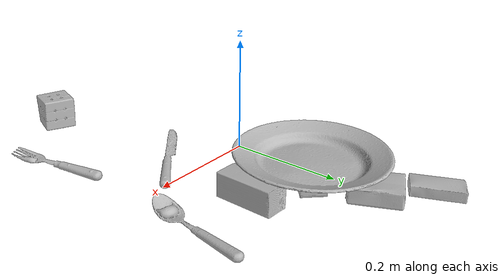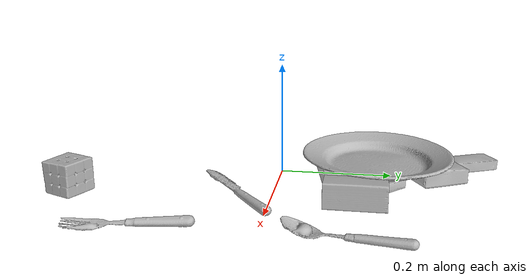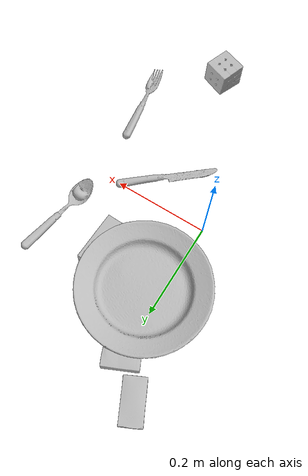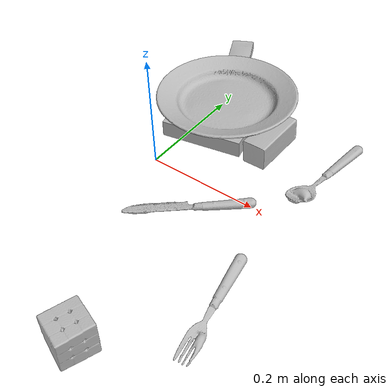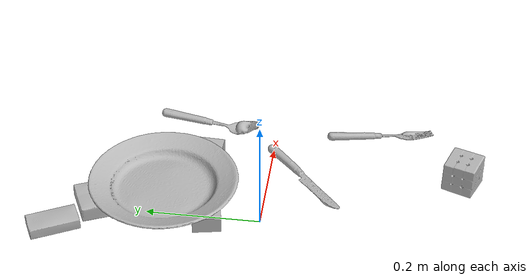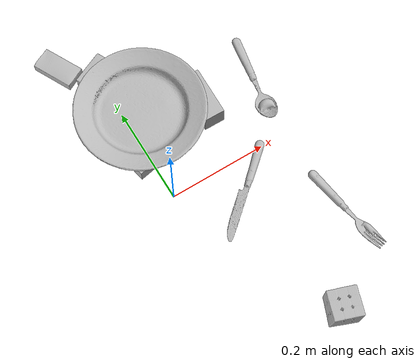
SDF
<sdf version="1.4">
  <world name="default">
    <light name="light1" type="point">
      <pose>0 0 1 0 0 0</pose>
      <diffuse>3 3 3 1</diffuse>
      <specular>3 3 3 1</specular>
    </light>
    <light name="light2" type="point">
      <pose>0 0.5 2 0 0 0</pose>
      <diffuse>1 1 1 1</diffuse>
      <specular>1 1 1 1</specular>
    </light>
    <light name="light3" type="point">
      <pose>0 0.5 2 0 0 0</pose>
      <diffuse>3 3 3 1</diffuse>
      <specular>3 3 3 1</specular>
    </light>
    <scene>
      <ambient>0.7 0.7 0.7</ambient>
    </scene>
    <model name="box11">
      <link name="link_box11">
        <collision name="default">
          <geometry>
            <mesh>
              <uri>model://jenga/collision_meshes/collision.obj</uri>
              <scale>1.0 1.0 1.0</scale>
            </mesh>
          </geometry>
          <surface>
            <friction>
              <ode>
                <mu>0.5</mu>
                <mu2>0.5</mu2>
              </ode>
            </friction>
          <contact>
        <ode>
            <max_vel>0</max_vel>
            <min_depth>0.0001</min_depth>
            <kp>1e8</kp>
        </ode>
    </contact></surface>
        </collision>
        <visual name="default">
          <geometry>
            <mesh>
              <uri>model://jenga/visual_meshes/visual.dae</uri>
              <scale>1.0 1.0 1.0</scale>
            </mesh>
          </geometry>
        </visual>
        <inertial>
          <mass>0.24099597334861755</mass>
          <pose>-2.502855807051674e-07 -0.00010250010382151231 -4.0923401684267446e-05 0.0 -7.34215461761844e-07 0.0</pose>
          <inertia>
            <ixx>6.668944e-05</ixx>
            <iyy>0.0004518858</iyy>
            <izz>0.00048242652</izz>
            <ixy>0</ixy>
            <ixz>0</ixz>
            <iyz>0</iyz>
          </inertia>
        </inertial>
      </link>
      <pose>0.035161539912223816 0.10075078159570694 0.015000010840594769 1.5824622476486124e-06 -1.228379675729166e-07 -2.949457171871234</pose>
    </model>
    <model name="box12">
      <link name="link_box12">
        <collision name="default">
          <geometry>
            <mesh>
              <uri>model://wood_block/collision_meshes/collision.obj</uri>
              <scale>0.5 0.5 0.5</scale>
            </mesh>
          </geometry>
          <surface>
            <friction>
              <ode>
                <mu>0.5</mu>
                <mu2>0.5</mu2>
              </ode>
            </friction>
          <contact>
        <ode>
            <max_vel>0</max_vel>
            <min_depth>0.0001</min_depth>
            <kp>1e8</kp>
        </ode>
    </contact></surface>
        </collision>
        <visual name="default">
          <geometry>
            <mesh>
              <uri>model://wood_block/visual_meshes/visual.dae</uri>
              <scale>0.5 0.5 0.5</scale>
            </mesh>
          </geometry>
        </visual>
        <inertial>
          <mass>0.14152581989765167</mass>
          <pose>-2.9066577553749084e-06 -0.000285404734313488 0.00013204291462898254 -0.05220812938960465 -0.005192695343712196 -0.006861377662393293</pose>
          <inertia>
            <ixx>4.7345737e-05</ixx>
            <iyy>0.0001495652</iyy>
            <izz>0.00014900575</izz>
            <ixy>0</ixy>
            <ixz>0</ixz>
            <iyz>0</iyz>
          </inertia>
        </inertial>
      </link>
      <pose>0.14671772718429565 0.138393372297287 0.022528663277626038 -0.02626187481046283 -0.0044844444354524985 1.54814106641457</pose>
    </model>
    <model name="box13">
      <link name="link_box13">
        <collision name="default">
          <geometry>
            <mesh>
              <uri>model://sugar_box/collision_meshes/collision.obj</uri>
              <scale>0.5 0.5 0.5</scale>
            </mesh>
          </geometry>
          <surface>
            <friction>
              <ode>
                <mu>0.5</mu>
                <mu2>0.5</mu2>
              </ode>
            </friction>
          <contact>
        <ode>
            <max_vel>0</max_vel>
            <min_depth>0.0001</min_depth>
            <kp>1e8</kp>
        </ode>
    </contact></surface>
        </collision>
        <visual name="default">
          <geometry>
            <mesh>
              <uri>model://sugar_box/visual_meshes/visual.dae</uri>
              <scale>0.5 0.5 0.5</scale>
            </mesh>
          </geometry>
        </visual>
        <inertial>
          <mass>0.08336380124092102</mass>
          <pose>0.0005171863595023751 1.924554817378521e-05 -0.00018182402709499002 -0.0004046263001201691 0.0010506636386254094 0.0026153790217303746</pose>
          <inertia>
            <ixx>1.7364619e-05</ixx>
            <iyy>5.612603e-05</iyy>
            <izz>6.718955e-05</izz>
            <ixy>0</ixy>
            <ixz>0</ixz>
            <iyz>0</iyz>
          </inertia>
        </inertial>
      </link>
      <pose>-0.06041561812162399 0.3509100377559662 0.011399303562939167 0.0007754004977019164 -0.023432801914299743 -1.113531518173071</pose>
    </model>
    <model name="box21">
      <link name="link_box21">
        <collision name="default">
          <geometry>
            <mesh>
              <uri>model://pudding_box/collision_meshes/collision.obj</uri>
              <scale>0.5 0.5 0.5</scale>
            </mesh>
          </geometry>
          <surface>
            <friction>
              <ode>
                <mu>0.5</mu>
                <mu2>0.5</mu2>
              </ode>
            </friction>
          <contact>
        <ode>
            <max_vel>0</max_vel>
            <min_depth>0.0001</min_depth>
            <kp>1e8</kp>
        </ode>
    </contact></surface>
        </collision>
        <visual name="default">
          <geometry>
            <mesh>
              <uri>model://pudding_box/visual_meshes/visual.dae</uri>
              <scale>0.5 0.5 0.5</scale>
            </mesh>
          </geometry>
        </visual>
        <inertial>
          <mass>0.025778822600841522</mass>
          <pose>0.00024474109522998333 0.00040339428232982755 -0.0002594413817860186 0.005213100851918505 -0.006603799640504885 0.02007982516037135</pose>
          <inertia>
            <ixx>7.285408e-06</ixx>
            <iyy>4.901674e-06</iyy>
            <izz>1.07588085e-05</izz>
            <ixy>0</ixy>
            <ixz>0</ixz>
            <iyz>0</iyz>
          </inertia>
        </inertial>
      </link>
      <pose>0.052937913686037064 0.18862256407737732 0.009862903505563736 0.022348665474252346 -0.011391664117783007 2.2973610624377865</pose>
    </model>
    <model name="box22">
      <link name="link_box22">
        <collision name="default">
          <geometry>
            <mesh>
              <uri>model://rubiks_cube/collision_meshes/collision.obj</uri>
              <scale>1.0 1.0 1.0</scale>
            </mesh>
          </geometry>
          <surface>
            <friction>
              <ode>
                <mu>0.5</mu>
                <mu2>0.5</mu2>
              </ode>
            </friction>
          <contact>
        <ode>
            <max_vel>0</max_vel>
            <min_depth>0.0001</min_depth>
            <kp>1e8</kp>
        </ode>
    </contact></surface>
        </collision>
        <visual name="default">
          <geometry>
            <mesh>
              <uri>model://rubiks_cube/visual_meshes/visual.dae</uri>
              <scale>1.0 1.0 1.0</scale>
            </mesh>
          </geometry>
        </visual>
        <inertial>
          <mass>0.22147096693515778</mass>
          <pose>2.6721041649580002e-05 5.256967051536776e-05 -7.264316082000732e-06 -0.05467273282600652 -0.09814100107642566 -0.034457018786431724</pose>
          <inertia>
            <ixx>0.00012237758</ixx>
            <iyy>0.00012180688</iyy>
            <izz>0.00012339167</izz>
            <ixy>0</ixy>
            <ixz>0</ixz>
            <iyz>0</iyz>
          </inertia>
        </inertial>
      </link>
      <pose>0.14790183305740356 -0.3445865213871002 0.02867898903787136 -2.777711445728621e-06 2.081195883472103e-08 -1.916939325101162</pose>
    </model>
    <model name="box23">
      <link name="link_box23">
        <collision name="default">
          <geometry>
            <mesh>
              <uri>model://gelatin_box/collision_meshes/collision.obj</uri>
              <scale>1.0 1.0 1.0</scale>
            </mesh>
          </geometry>
          <surface>
            <friction>
              <ode>
                <mu>0.5</mu>
                <mu2>0.5</mu2>
              </ode>
            </friction>
          <contact>
        <ode>
            <max_vel>0</max_vel>
            <min_depth>0.0001</min_depth>
            <kp>1e8</kp>
        </ode>
    </contact></surface>
        </collision>
        <visual name="default">
          <geometry>
            <mesh>
              <uri>model://gelatin_box/visual_meshes/visual.dae</uri>
              <scale>1.0 1.0 1.0</scale>
            </mesh>
          </geometry>
        </visual>
        <inertial>
          <mass>0.20053431391716003</mass>
          <pose>0.0004319618456065655 0.00011156871914863586 -0.00036403207923285663 -0.001050372330881514 -0.004755818219920532 0.016440563197859918</pose>
          <inertia>
            <ixx>0.00014156084</ixx>
            <iyy>0.00010111618</iyy>
            <izz>0.00021548718</izz>
            <ixy>0</ixy>
            <ixz>0</ixz>
            <iyz>0</iyz>
          </inertia>
        </inertial>
      </link>
      <pose>0.007656050845980644 0.27902066707611084 0.015168314799666405 0.005598207811602128 -0.007304288335731698 0.4344768533065753</pose>
    </model>
    <model name="plate1">
      <link name="link_plate1">
        <collision name="default">
          <geometry>
            <mesh>
              <uri>model://plate/collision_meshes/collision.obj</uri>
              <scale>1.0 1.0 1.0</scale>
            </mesh>
          </geometry>
          <surface>
            <friction>
              <ode>
                <mu>0.5</mu>
                <mu2>0.5</mu2>
              </ode>
            </friction>
          <contact>
        <ode>
            <max_vel>0</max_vel>
            <min_depth>0.0001</min_depth>
            <kp>1e8</kp>
        </ode>
    </contact></surface>
        </collision>
        <visual name="default">
          <geometry>
            <mesh>
              <uri>model://plate/visual_meshes/visual.dae</uri>
              <scale>1.0 1.0 1.0</scale>
            </mesh>
          </geometry>
        </visual>
        <inertial>
          <mass>0.1705944687128067</mass>
          <pose>-0.0006044638575986028 0.0002782570372801274 -0.0010561983799561858 0.002218806973518856 -0.003225464946202784 0.4526031622217862</pose>
          <inertia>
            <ixx>0.0007980444</ixx>
            <iyy>0.0007904114</iyy>
            <izz>0.0015608557</izz>
            <ixy>0</ixy>
            <ixz>0</ixz>
            <iyz>0</iyz>
          </inertia>
        </inertial>
      </link>
      <pose>0.02990579791367054 0.1730486899614334 0.04328593984246254 -0.00973505762455668 -0.0026041742319071917 0.13576569208373956</pose>
    </model>
    <model name="silverware1">
      <link name="link_silverware1">
        <collision name="default">
          <geometry>
            <mesh>
              <uri>model://fork/collision_meshes/collision.obj</uri>
              <scale>1.0 1.0 1.0</scale>
            </mesh>
          </geometry>
          <surface>
            <friction>
              <ode>
                <mu>0.5</mu>
                <mu2>0.5</mu2>
              </ode>
            </friction>
          <contact>
        <ode>
            <max_vel>0</max_vel>
            <min_depth>0.0001</min_depth>
            <kp>1e8</kp>
        </ode>
    </contact></surface>
        </collision>
        <visual name="default">
          <geometry>
            <mesh>
              <uri>model://fork/visual_meshes/visual.dae</uri>
              <scale>1.0 1.0 1.0</scale>
            </mesh>
          </geometry>
        </visual>
        <inertial>
          <mass>0.02693658135831356</mass>
          <pose>-0.02957003191113472 0.00046588244731538 0.0003218860365450382 -0.013551533598057301 -0.010977833518912038 0.014453896181446386</pose>
          <inertia>
            <ixx>9.442797e-07</ixx>
            <iyy>7.032368e-05</iyy>
            <izz>7.074603e-05</izz>
            <ixy>0</ixy>
            <ixz>0</ixz>
            <iyz>0</iyz>
          </inertia>
        </inertial>
      </link>
      <pose>0.2641722857952118 -0.19161519408226013 0.005677239038050175 -0.17510121624554345 0.025555513896034943 -1.407824087083375</pose>
    </model>
    <model name="silverware2">
      <link name="link_silverware2">
        <collision name="default">
          <geometry>
            <mesh>
              <uri>model://knife/collision_meshes/collision.obj</uri>
              <scale>1.0 1.0 1.0</scale>
            </mesh>
          </geometry>
          <surface>
            <friction>
              <ode>
                <mu>0.5</mu>
                <mu2>0.5</mu2>
              </ode>
            </friction>
          <contact>
        <ode>
            <max_vel>0</max_vel>
            <min_depth>0.0001</min_depth>
            <kp>1e8</kp>
        </ode>
    </contact></surface>
        </collision>
        <visual name="default">
          <geometry>
            <mesh>
              <uri>model://knife/visual_meshes/visual.dae</uri>
              <scale>1.0 1.0 1.0</scale>
            </mesh>
          </geometry>
        </visual>
        <inertial>
          <mass>0.029087698087096214</mass>
          <pose>-0.023785242810845375 0.0015275123296305537 5.0620237743714824e-05 0.07305335090844457 0.017248415402536993 -0.007409830271159857</pose>
          <inertia>
            <ixx>8.256269e-07</ixx>
            <iyy>0.00011175022</iyy>
            <izz>0.00011201614</izz>
            <ixy>0</ixy>
            <ixz>0</ixz>
            <iyz>0</iyz>
          </inertia>
        </inertial>
      </link>
      <pose>0.12137027829885483 -0.0606735423207283 0.007946575991809368 -0.02384487981310659 -0.014543229115159262 -2.43382993650688</pose>
    </model>
    <model name="silverware3">
      <link name="link_silverware3">
        <collision name="default">
          <geometry>
            <mesh>
              <uri>model://spoon/collision_meshes/collision.obj</uri>
              <scale>1.0 1.0 1.0</scale>
            </mesh>
          </geometry>
          <surface>
            <friction>
              <ode>
                <mu>0.5</mu>
                <mu2>0.5</mu2>
              </ode>
            </friction>
          <contact>
        <ode>
            <max_vel>0</max_vel>
            <min_depth>0.0001</min_depth>
            <kp>1e8</kp>
        </ode>
    </contact></surface>
        </collision>
        <visual name="default">
          <geometry>
            <mesh>
              <uri>model://spoon/visual_meshes/visual.dae</uri>
              <scale>1.0 1.0 1.0</scale>
            </mesh>
          </geometry>
        </visual>
        <inertial>
          <mass>0.04163059964776039</mass>
          <pose>-0.005526324268430471 -0.001603418029844761 -0.0007271656068041921 0.035215733596471024 -0.03906582179646946 0.006150610371924991</pose>
          <inertia>
            <ixx>2.3155617e-06</ixx>
            <iyy>0.00015840305</iyy>
            <izz>0.00015954502</izz>
            <ixy>0</ixy>
            <ixz>0</ixz>
            <iyz>0</iyz>
          </inertia>
        </inertial>
      </link>
      <pose>0.2657802402973175 0.12844136357307434 0.008385268040001392 0.006732033033209386 0.026892962545253297 -1.7409011201362983</pose>
    </model>
  <physics type="ode">
      <max_contacts>50</max_contacts>
      <ode>
        <solver>
          <type>quick</type>
          <iters>75</iters>
        </solver>
        <constraints>
          <contact_max_correcting_vel>0</contact_max_correcting_vel>
          <contact_surface_layer>0</contact_surface_layer>
        </constraints>
      </ode>
    </physics></world>
</sdf>
